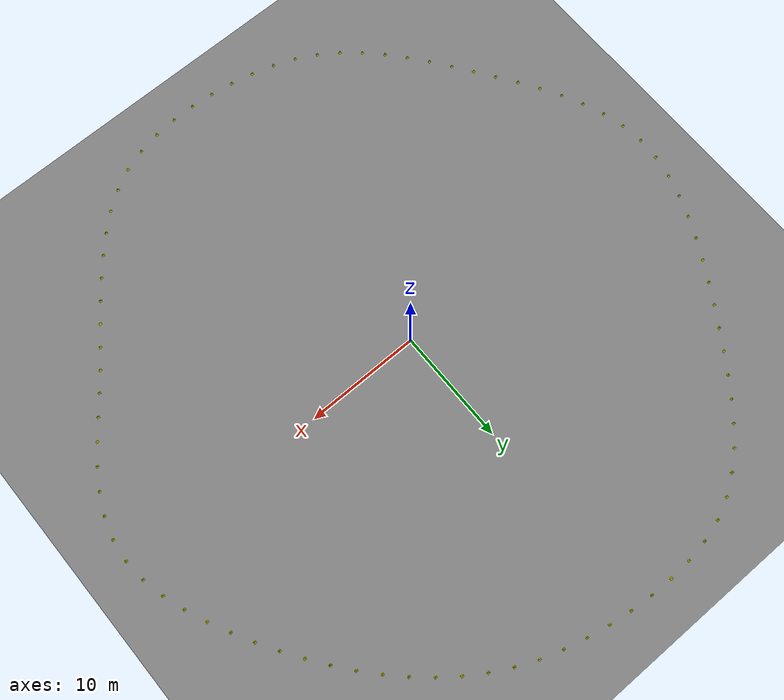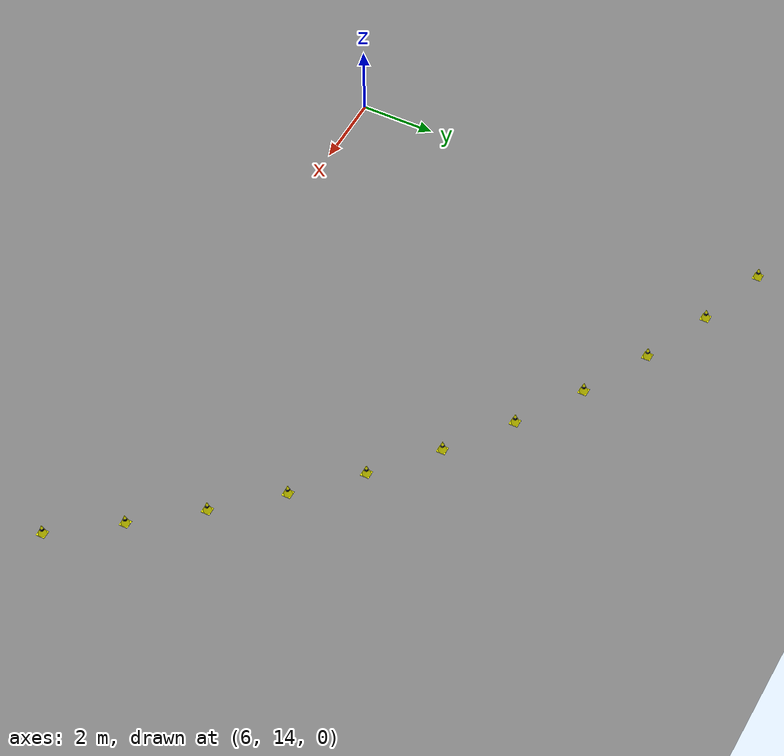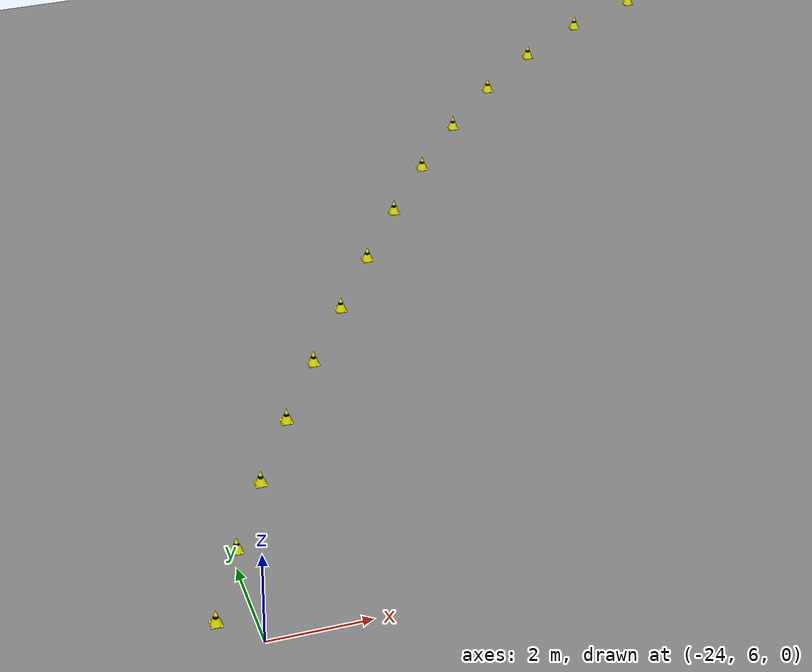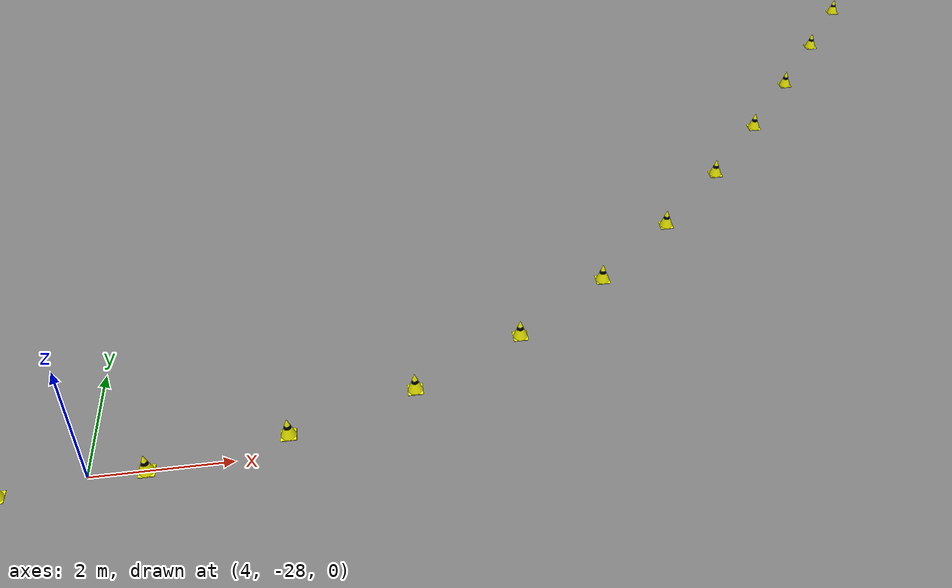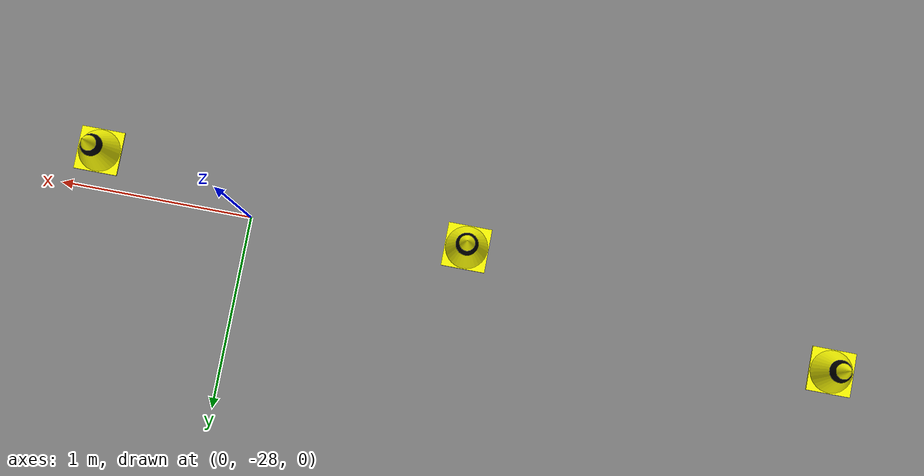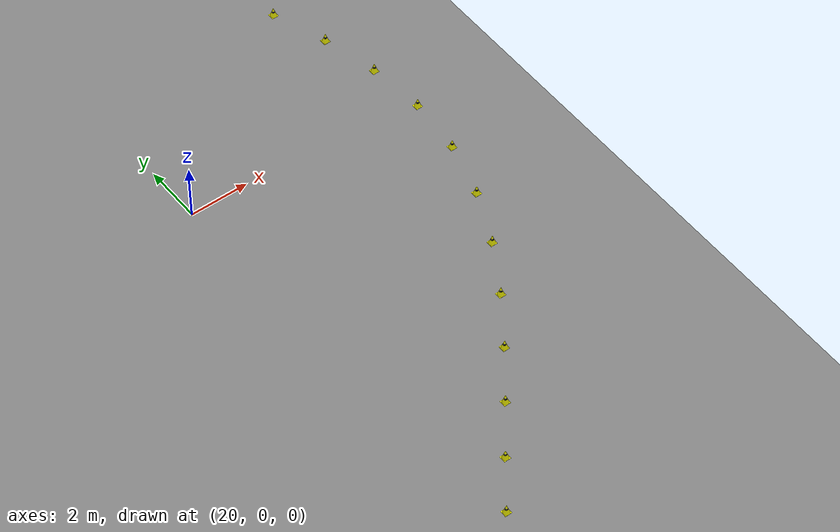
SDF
<sdf version="1.9">
 <world name="fsae_world">
  <plugin filename="gz-sim-physics-system" name="gz::sim::systems::Physics"/>
  <plugin filename="gz-sim-user-commands-system" name="gz::sim::systems::UserCommands"/>
  <plugin filename="gz-sim-scene-broadcaster-system" name="gz::sim::systems::SceneBroadcaster"/>
  <plugin filename="gz-sim-imu-system" name="gz::sim::systems::Imu"/>
  <plugin filename="gz-sim-sensors-system" name="gz::sim::systems::Sensors">
   <render_engine>ogre2</render_engine>
  </plugin>
  <scene><ambient>1.0 1.0 1.0</ambient><background>0.7 0.8 0.9</background></scene>
  <gravity>0 0 -9.81</gravity>
  <physics name="default_physics" type="ode">
   <max_step_size>0.001</max_step_size>
   <real_time_factor>1.0</real_time_factor>
  </physics>
  <light type="directional" name="sun">
   <pose>0 0 50 0 0 0</pose>
   <diffuse>0.9 0.9 0.9 1</diffuse>
   <specular>0.3 0.3 0.3 1</specular>
   <direction>-0.5 0.3 -1.0</direction>
  </light>
  <model name="ground_plane">
   <static>true</static>
   <link name="link">
    <collision name="collision">
     <geometry><plane><normal>0 0 1</normal><size>200 200</size></plane></geometry>
     <surface><friction><ode><mu>1.0</mu><mu2>1.0</mu2></ode></friction></surface>
    </collision>
    <visual name="visual">
     <geometry><plane><normal>0 0 1</normal><size>200 200</size></plane></geometry>
     <material><ambient>0.4 0.4 0.4 1</ambient><diffuse>0.5 0.5 0.5 1</diffuse></material>
    </visual>
   </link>
  </model>
  <include>
   <uri>model://cone_yellow</uri>
   <name>cone_yellow_0</name>
   <pose>27.9788 -0.6455 0.1625 0 0 0</pose>
  </include>
  <include>
   <uri>model://cone_yellow</uri>
   <name>cone_yellow_1</name>
   <pose>27.8067 1.3242 0.1625 0 0 0</pose>
  </include>
  <include>
   <uri>model://cone_yellow</uri>
   <name>cone_yellow_2</name>
   <pose>27.3615 3.2519 0.1625 0 0 0</pose>
  </include>
  <include>
   <uri>model://cone_yellow</uri>
   <name>cone_yellow_3</name>
   <pose>26.7258 5.1260 0.1625 0 0 0</pose>
  </include>
  <include>
   <uri>model://cone_yellow</uri>
   <name>cone_yellow_4</name>
   <pose>25.9521 6.9476 0.1625 0 0 0</pose>
  </include>
  <include>
   <uri>model://cone_yellow</uri>
   <name>cone_yellow_5</name>
   <pose>25.0729 8.7210 0.1625 0 0 0</pose>
  </include>
  <include>
   <uri>model://cone_yellow</uri>
   <name>cone_yellow_6</name>
   <pose>24.1091 10.4498 0.1625 0 0 0</pose>
  </include>
  <include>
   <uri>model://cone_yellow</uri>
   <name>cone_yellow_7</name>
   <pose>23.0734 12.1367 0.1625 0 0 0</pose>
  </include>
  <include>
   <uri>model://cone_yellow</uri>
   <name>cone_yellow_8</name>
   <pose>21.9734 13.7823 0.1625 0 0 0</pose>
  </include>
  <include>
   <uri>model://cone_yellow</uri>
   <name>cone_yellow_9</name>
   <pose>20.8112 15.3846 0.1625 0 0 0</pose>
  </include>
  <include>
   <uri>model://cone_yellow</uri>
   <name>cone_yellow_10</name>
   <pose>19.5777 16.9326 0.1625 0 0 0</pose>
  </include>
  <include>
   <uri>model://cone_yellow</uri>
   <name>cone_yellow_11</name>
   <pose>18.2612 18.4105 0.1625 0 0 0</pose>
  </include>
  <include>
   <uri>model://cone_yellow</uri>
   <name>cone_yellow_12</name>
   <pose>16.8598 19.8081 0.1625 0 0 0</pose>
  </include>
  <include>
   <uri>model://cone_yellow</uri>
   <name>cone_yellow_13</name>
   <pose>15.3724 21.1138 0.1625 0 0 0</pose>
  </include>
  <include>
   <uri>model://cone_yellow</uri>
   <name>cone_yellow_14</name>
   <pose>13.7986 22.3138 0.1625 0 0 0</pose>
  </include>
  <include>
   <uri>model://cone_yellow</uri>
   <name>cone_yellow_15</name>
   <pose>12.1402 23.3938 0.1625 0 0 0</pose>
  </include>
  <include>
   <uri>model://cone_yellow</uri>
   <name>cone_yellow_16</name>
   <pose>10.4008 24.3377 0.1625 0 0 0</pose>
  </include>
  <include>
   <uri>model://cone_yellow</uri>
   <name>cone_yellow_17</name>
   <pose>8.5875 25.1301 0.1625 0 0 0</pose>
  </include>
  <include>
   <uri>model://cone_yellow</uri>
   <name>cone_yellow_18</name>
   <pose>6.7141 25.7683 0.1625 0 0 0</pose>
  </include>
  <include>
   <uri>model://cone_yellow</uri>
   <name>cone_yellow_19</name>
   <pose>4.8027 26.2820 0.1625 0 0 0</pose>
  </include>
  <include>
   <uri>model://cone_yellow</uri>
   <name>cone_yellow_20</name>
   <pose>2.8649 26.6851 0.1625 0 0 0</pose>
  </include>
  <include>
   <uri>model://cone_yellow</uri>
   <name>cone_yellow_21</name>
   <pose>0.9077 26.9801 0.1625 0 0 0</pose>
  </include>
  <include>
   <uri>model://cone_yellow</uri>
   <name>cone_yellow_22</name>
   <pose>-1.0631 27.1620 0.1625 0 0 0</pose>
  </include>
  <include>
   <uri>model://cone_yellow</uri>
   <name>cone_yellow_23</name>
   <pose>-3.0415 27.2172 0.1625 0 0 0</pose>
  </include>
  <include>
   <uri>model://cone_yellow</uri>
   <name>cone_yellow_24</name>
   <pose>-5.0182 27.1227 0.1625 0 0 0</pose>
  </include>
  <include>
   <uri>model://cone_yellow</uri>
   <name>cone_yellow_25</name>
   <pose>-6.9767 26.8417 0.1625 0 0 0</pose>
  </include>
  <include>
   <uri>model://cone_yellow</uri>
   <name>cone_yellow_26</name>
   <pose>-8.8841 26.3184 0.1625 0 0 0</pose>
  </include>
  <include>
   <uri>model://cone_yellow</uri>
   <name>cone_yellow_27</name>
   <pose>-10.6825 25.4965 0.1625 0 0 0</pose>
  </include>
  <include>
   <uri>model://cone_yellow</uri>
   <name>cone_yellow_28</name>
   <pose>-12.3356 24.4105 0.1625 0 0 0</pose>
  </include>
  <include>
   <uri>model://cone_yellow</uri>
   <name>cone_yellow_29</name>
   <pose>-13.8407 23.1263 0.1625 0 0 0</pose>
  </include>
  <include>
   <uri>model://cone_yellow</uri>
   <name>cone_yellow_30</name>
   <pose>-15.2131 21.7006 0.1625 0 0 0</pose>
  </include>
  <include>
   <uri>model://cone_yellow</uri>
   <name>cone_yellow_31</name>
   <pose>-16.4764 20.1770 0.1625 0 0 0</pose>
  </include>
  <include>
   <uri>model://cone_yellow</uri>
   <name>cone_yellow_32</name>
   <pose>-17.6562 18.5877 0.1625 0 0 0</pose>
  </include>
  <include>
   <uri>model://cone_yellow</uri>
   <name>cone_yellow_33</name>
   <pose>-18.7779 16.9567 0.1625 0 0 0</pose>
  </include>
  <include>
   <uri>model://cone_yellow</uri>
   <name>cone_yellow_34</name>
   <pose>-19.8670 15.3037 0.1625 0 0 0</pose>
  </include>
  <include>
   <uri>model://cone_yellow</uri>
   <name>cone_yellow_35</name>
   <pose>-20.9371 13.6384 0.1625 0 0 0</pose>
  </include>
  <include>
   <uri>model://cone_yellow</uri>
   <name>cone_yellow_36</name>
   <pose>-21.9716 11.9507 0.1625 0 0 0</pose>
  </include>
  <include>
   <uri>model://cone_yellow</uri>
   <name>cone_yellow_37</name>
   <pose>-22.9569 10.2339 0.1625 0 0 0</pose>
  </include>
  <include>
   <uri>model://cone_yellow</uri>
   <name>cone_yellow_38</name>
   <pose>-23.8780 8.4818 0.1625 0 0 0</pose>
  </include>
  <include>
   <uri>model://cone_yellow</uri>
   <name>cone_yellow_39</name>
   <pose>-24.7154 6.6884 0.1625 0 0 0</pose>
  </include>
  <include>
   <uri>model://cone_yellow</uri>
   <name>cone_yellow_40</name>
   <pose>-25.4426 4.8477 0.1625 0 0 0</pose>
  </include>
  <include>
   <uri>model://cone_yellow</uri>
   <name>cone_yellow_41</name>
   <pose>-26.0218 2.9555 0.1625 0 0 0</pose>
  </include>
  <include>
   <uri>model://cone_yellow</uri>
   <name>cone_yellow_42</name>
   <pose>-26.3984 1.0134 0.1625 0 0 0</pose>
  </include>
  <include>
   <uri>model://cone_yellow</uri>
   <name>cone_yellow_43</name>
   <pose>-26.4978 -0.9615 0.1625 0 0 0</pose>
  </include>
  <include>
   <uri>model://cone_yellow</uri>
   <name>cone_yellow_44</name>
   <pose>-26.2736 -2.9262 0.1625 0 0 0</pose>
  </include>
  <include>
   <uri>model://cone_yellow</uri>
   <name>cone_yellow_45</name>
   <pose>-25.7733 -4.8401 0.1625 0 0 0</pose>
  </include>
  <include>
   <uri>model://cone_yellow</uri>
   <name>cone_yellow_46</name>
   <pose>-25.0596 -6.6856 0.1625 0 0 0</pose>
  </include>
  <include>
   <uri>model://cone_yellow</uri>
   <name>cone_yellow_47</name>
   <pose>-24.1878 -8.4623 0.1625 0 0 0</pose>
  </include>
  <include>
   <uri>model://cone_yellow</uri>
   <name>cone_yellow_48</name>
   <pose>-23.2025 -10.1789 0.1625 0 0 0</pose>
  </include>
  <include>
   <uri>model://cone_yellow</uri>
   <name>cone_yellow_49</name>
   <pose>-22.1390 -11.8484 0.1625 0 0 0</pose>
  </include>
  <include>
   <uri>model://cone_yellow</uri>
   <name>cone_yellow_50</name>
   <pose>-21.0270 -13.4860 0.1625 0 0 0</pose>
  </include>
  <include>
   <uri>model://cone_yellow</uri>
   <name>cone_yellow_51</name>
   <pose>-19.8962 -15.1082 0.1625 0 0 0</pose>
  </include>
  <include>
   <uri>model://cone_yellow</uri>
   <name>cone_yellow_52</name>
   <pose>-18.7541 -16.7251 0.1625 0 0 0</pose>
  </include>
  <include>
   <uri>model://cone_yellow</uri>
   <name>cone_yellow_53</name>
   <pose>-17.5790 -18.3180 0.1625 0 0 0</pose>
  </include>
  <include>
   <uri>model://cone_yellow</uri>
   <name>cone_yellow_54</name>
   <pose>-16.3502 -19.8699 0.1625 0 0 0</pose>
  </include>
  <include>
   <uri>model://cone_yellow</uri>
   <name>cone_yellow_55</name>
   <pose>-15.0485 -21.3608 0.1625 0 0 0</pose>
  </include>
  <include>
   <uri>model://cone_yellow</uri>
   <name>cone_yellow_56</name>
   <pose>-13.6548 -22.7660 0.1625 0 0 0</pose>
  </include>
  <include>
   <uri>model://cone_yellow</uri>
   <name>cone_yellow_57</name>
   <pose>-12.1516 -24.0529 0.1625 0 0 0</pose>
  </include>
  <include>
   <uri>model://cone_yellow</uri>
   <name>cone_yellow_58</name>
   <pose>-10.5252 -25.1795 0.1625 0 0 0</pose>
  </include>
  <include>
   <uri>model://cone_yellow</uri>
   <name>cone_yellow_59</name>
   <pose>-8.7719 -26.0952 0.1625 0 0 0</pose>
  </include>
  <include>
   <uri>model://cone_yellow</uri>
   <name>cone_yellow_60</name>
   <pose>-6.9233 -26.8015 0.1625 0 0 0</pose>
  </include>
  <include>
   <uri>model://cone_yellow</uri>
   <name>cone_yellow_61</name>
   <pose>-5.0234 -27.3554 0.1625 0 0 0</pose>
  </include>
  <include>
   <uri>model://cone_yellow</uri>
   <name>cone_yellow_62</name>
   <pose>-3.0886 -27.7722 0.1625 0 0 0</pose>
  </include>
  <include>
   <uri>model://cone_yellow</uri>
   <name>cone_yellow_63</name>
   <pose>-1.1298 -28.0552 0.1625 0 0 0</pose>
  </include>
  <include>
   <uri>model://cone_yellow</uri>
   <name>cone_yellow_64</name>
   <pose>0.8441 -28.1991 0.1625 0 0 0</pose>
  </include>
  <include>
   <uri>model://cone_yellow</uri>
   <name>cone_yellow_65</name>
   <pose>2.8230 -28.1904 0.1625 0 0 0</pose>
  </include>
  <include>
   <uri>model://cone_yellow</uri>
   <name>cone_yellow_66</name>
   <pose>4.7932 -28.0065 0.1625 0 0 0</pose>
  </include>
  <include>
   <uri>model://cone_yellow</uri>
   <name>cone_yellow_67</name>
   <pose>6.7323 -27.6142 0.1625 0 0 0</pose>
  </include>
  <include>
   <uri>model://cone_yellow</uri>
   <name>cone_yellow_68</name>
   <pose>8.6021 -26.9699 0.1625 0 0 0</pose>
  </include>
  <include>
   <uri>model://cone_yellow</uri>
   <name>cone_yellow_69</name>
   <pose>10.3397 -26.0262 0.1625 0 0 0</pose>
  </include>
  <include>
   <uri>model://cone_yellow</uri>
   <name>cone_yellow_70</name>
   <pose>11.9260 -24.8442 0.1625 0 0 0</pose>
  </include>
  <include>
   <uri>model://cone_yellow</uri>
   <name>cone_yellow_71</name>
   <pose>13.3804 -23.5022 0.1625 0 0 0</pose>
  </include>
  <include>
   <uri>model://cone_yellow</uri>
   <name>cone_yellow_72</name>
   <pose>14.7288 -22.0534 0.1625 0 0 0</pose>
  </include>
  <include>
   <uri>model://cone_yellow</uri>
   <name>cone_yellow_73</name>
   <pose>15.9965 -20.5332 0.1625 0 0 0</pose>
  </include>
  <include>
   <uri>model://cone_yellow</uri>
   <name>cone_yellow_74</name>
   <pose>17.2055 -18.9659 0.1625 0 0 0</pose>
  </include>
  <include>
   <uri>model://cone_yellow</uri>
   <name>cone_yellow_75</name>
   <pose>18.3769 -17.3702 0.1625 0 0 0</pose>
  </include>
  <include>
   <uri>model://cone_yellow</uri>
   <name>cone_yellow_76</name>
   <pose>19.5301 -15.7661 0.1625 0 0 0</pose>
  </include>
  <include>
   <uri>model://cone_yellow</uri>
   <name>cone_yellow_77</name>
   <pose>20.6598 -14.2175 0.1625 0 0 0</pose>
  </include>
  <include>
   <uri>model://cone_yellow</uri>
   <name>cone_yellow_78</name>
   <pose>21.8111 -12.7260 0.1625 0 0 0</pose>
  </include>
  <include>
   <uri>model://cone_yellow</uri>
   <name>cone_yellow_79</name>
   <pose>23.0342 -11.1863 0.1625 0 0 0</pose>
  </include>
  <include>
   <uri>model://cone_yellow</uri>
   <name>cone_yellow_80</name>
   <pose>24.2449 -9.6202 0.1625 0 0 0</pose>
  </include>
  <include>
   <uri>model://cone_yellow</uri>
   <name>cone_yellow_81</name>
   <pose>25.3884 -8.0048 0.1625 0 0 0</pose>
  </include>
  <include>
   <uri>model://cone_yellow</uri>
   <name>cone_yellow_82</name>
   <pose>26.4089 -6.3093 0.1625 0 0 0</pose>
  </include>
  <include>
   <uri>model://cone_yellow</uri>
   <name>cone_yellow_83</name>
   <pose>27.2348 -4.5119 0.1625 0 0 0</pose>
  </include>
  <include>
   <uri>model://cone_yellow</uri>
   <name>cone_yellow_84</name>
   <pose>27.7835 -2.6123 0.1625 0 0 0</pose>
  </include>
 </world>
</sdf>

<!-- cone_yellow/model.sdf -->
<sdf version="1.9">
  <model name="cone_yellow">
    <static>true</static>
    <link name="link">
      <collision name="collision">
        <pose>0 0 -0.1625 0 0 0</pose>
        <geometry><mesh><uri>model://cone_yellow/meshes/cone.stl</uri></mesh></geometry>
      </collision>
      <visual name="body">
        <pose>0 0 -0.1625 0 0 0</pose>
        <geometry><mesh><uri>model://cone_yellow/meshes/body.stl</uri></mesh></geometry>
        <material><ambient>1.0 1.0 0.0 1</ambient><diffuse>1.0 1.0 0.0 1</diffuse></material>
      </visual>
      <visual name="stripe">
        <pose>0 0 -0.1625 0 0 0</pose>
        <geometry><mesh><uri>model://cone_yellow/meshes/stripe.stl</uri></mesh></geometry>
        <material><ambient>0.0 0.0 0.0 1</ambient><diffuse>0.0 0.0 0.0 1</diffuse></material>
      </visual>
    </link>
  </model>
</sdf>
